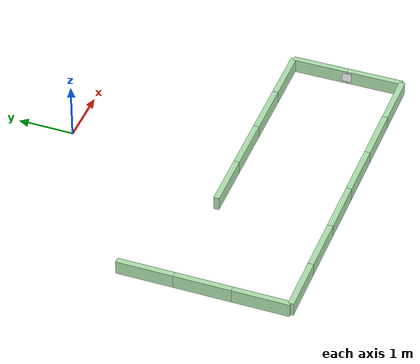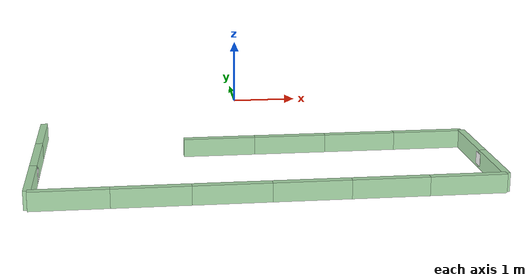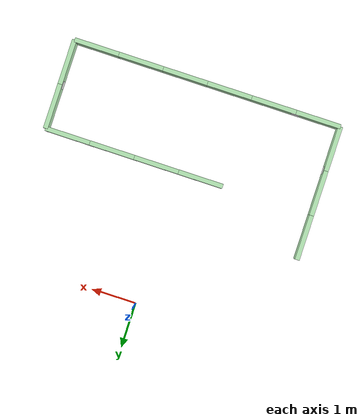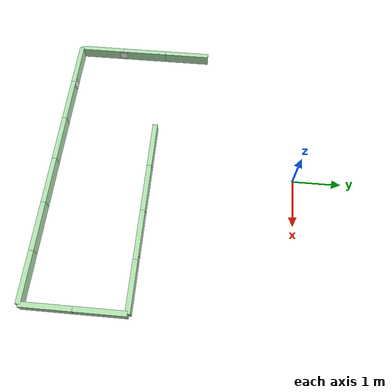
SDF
<sdf version="1.6">
 <world name="default">
  <model name="wall_100_25h_1_clone_3">
   <link name="link">
    <inertial>
     <mass>1</mass>
     <inertia>
      <ixx>0.166667</ixx>
      <ixy>0</ixy>
      <ixz>0</ixz>
      <iyy>0.166667</iyy>
      <iyz>0</iyz>
      <izz>0.166667</izz>
     </inertia>
    </inertial>
    <visual name="visual">
     <geometry><box><size>1 0.1 0.25</size></box></geometry>
     <material>
      <script><name>Gazebo/Grey</name><uri>file://media/materials/scripts/gazebo.material</uri></script>
      <ambient>0.3 0.5 0.3 1</ambient>
      <diffuse>0.7 0.9 0.7 1</diffuse>
      <specular>0.01 0.02 0.01 1</specular>
      <emissive>0 0 0 1</emissive>
      <lighting>1</lighting>
      <shader type="vertex"><normal_map>__default__</normal_map></shader>
     </material>
    </visual>
    <collision name="collision">
     <geometry><box><size>1 0.1 0.25</size></box></geometry>
     <surface>
      <friction>
       <ode><mu>1</mu><mu2>1</mu2><fdir1>0 0 0</fdir1><slip1>0</slip1><slip2>0</slip2></ode>
       <torsional>
        <coefficient>1</coefficient>
        <patch_radius>0</patch_radius>
        <surface_radius>0</surface_radius>
        <use_patch_radius>1</use_patch_radius>
        <ode><slip>0</slip></ode>
       </torsional>
      </friction>
      <bounce><restitution_coefficient>0</restitution_coefficient><threshold>1e+06</threshold></bounce>
      <contact>
       <collide_without_contact>0</collide_without_contact>
       <collide_without_contact_bitmask>1</collide_without_contact_bitmask>
       <collide_bitmask>1</collide_bitmask>
       <ode>
        <soft_cfm>0</soft_cfm>
        <soft_erp>0.2</soft_erp>
        <kp>1e+13</kp>
        <kd>1</kd>
        <max_vel>0.01</max_vel>
        <min_depth>0</min_depth>
       </ode>
       <bullet>
        <split_impulse>1</split_impulse>
        <split_impulse_penetration_threshold>-0.01</split_impulse_penetration_threshold>
        <soft_cfm>0</soft_cfm>
        <soft_erp>0.2</soft_erp>
        <kp>1e+13</kp>
        <kd>1</kd>
       </bullet>
      </contact>
     </surface>
    </collision>
   </link>
   <static>1</static>
   <pose>-0.5 -3 0.125 0.000404 -0 0</pose>
  </model>
  <model name="wall_100_25h_1_clone_4">
   <link name="link">
    <inertial>
     <mass>1</mass>
     <inertia>
      <ixx>0.166667</ixx>
      <ixy>0</ixy>
      <ixz>0</ixz>
      <iyy>0.166667</iyy>
      <iyz>0</iyz>
      <izz>0.166667</izz>
     </inertia>
    </inertial>
    <visual name="visual">
     <geometry><box><size>1 0.1 0.25</size></box></geometry>
     <material>
      <script><name>Gazebo/Grey</name><uri>file://media/materials/scripts/gazebo.material</uri></script>
      <ambient>0.3 0.5 0.3 1</ambient>
      <diffuse>0.7 0.9 0.7 1</diffuse>
      <specular>0.01 0.02 0.01 1</specular>
      <emissive>0 0 0 1</emissive>
      <lighting>1</lighting>
      <shader type="vertex"><normal_map>__default__</normal_map></shader>
     </material>
    </visual>
    <collision name="collision">
     <geometry><box><size>1 0.1 0.25</size></box></geometry>
     <surface>
      <friction>
       <ode><mu>1</mu><mu2>1</mu2><fdir1>0 0 0</fdir1><slip1>0</slip1><slip2>0</slip2></ode>
       <torsional>
        <coefficient>1</coefficient>
        <patch_radius>0</patch_radius>
        <surface_radius>0</surface_radius>
        <use_patch_radius>1</use_patch_radius>
        <ode><slip>0</slip></ode>
       </torsional>
      </friction>
      <bounce><restitution_coefficient>0</restitution_coefficient><threshold>1e+06</threshold></bounce>
      <contact>
       <collide_without_contact>0</collide_without_contact>
       <collide_without_contact_bitmask>1</collide_without_contact_bitmask>
       <collide_bitmask>1</collide_bitmask>
       <ode>
        <soft_cfm>0</soft_cfm>
        <soft_erp>0.2</soft_erp>
        <kp>1e+13</kp>
        <kd>1</kd>
        <max_vel>0.01</max_vel>
        <min_depth>0</min_depth>
       </ode>
       <bullet>
        <split_impulse>1</split_impulse>
        <split_impulse_penetration_threshold>-0.01</split_impulse_penetration_threshold>
        <soft_cfm>0</soft_cfm>
        <soft_erp>0.2</soft_erp>
        <kp>1e+13</kp>
        <kd>1</kd>
       </bullet>
      </contact>
     </surface>
    </collision>
   </link>
   <static>1</static>
   <pose>0.5 -3 0.125 0.000404 -0 0</pose>
  </model>
  <model name="wall_100_25h_1_clone_5">
   <link name="link">
    <inertial>
     <mass>1</mass>
     <inertia>
      <ixx>0.166667</ixx>
      <ixy>0</ixy>
      <ixz>0</ixz>
      <iyy>0.166667</iyy>
      <iyz>0</iyz>
      <izz>0.166667</izz>
     </inertia>
    </inertial>
    <visual name="visual">
     <geometry><box><size>1 0.1 0.25</size></box></geometry>
     <material>
      <script><name>Gazebo/Grey</name><uri>file://media/materials/scripts/gazebo.material</uri></script>
      <ambient>0.3 0.5 0.3 1</ambient>
      <diffuse>0.7 0.9 0.7 1</diffuse>
      <specular>0.01 0.02 0.01 1</specular>
      <emissive>0 0 0 1</emissive>
      <lighting>1</lighting>
      <shader type="vertex"><normal_map>__default__</normal_map></shader>
     </material>
    </visual>
    <collision name="collision">
     <geometry><box><size>1 0.1 0.25</size></box></geometry>
     <surface>
      <friction>
       <ode><mu>1</mu><mu2>1</mu2><fdir1>0 0 0</fdir1><slip1>0</slip1><slip2>0</slip2></ode>
       <torsional>
        <coefficient>1</coefficient>
        <patch_radius>0</patch_radius>
        <surface_radius>0</surface_radius>
        <use_patch_radius>1</use_patch_radius>
        <ode><slip>0</slip></ode>
       </torsional>
      </friction>
      <bounce><restitution_coefficient>0</restitution_coefficient><threshold>1e+06</threshold></bounce>
      <contact>
       <collide_without_contact>0</collide_without_contact>
       <collide_without_contact_bitmask>1</collide_without_contact_bitmask>
       <collide_bitmask>1</collide_bitmask>
       <ode>
        <soft_cfm>0</soft_cfm>
        <soft_erp>0.2</soft_erp>
        <kp>1e+13</kp>
        <kd>1</kd>
        <max_vel>0.01</max_vel>
        <min_depth>0</min_depth>
       </ode>
       <bullet>
        <split_impulse>1</split_impulse>
        <split_impulse_penetration_threshold>-0.01</split_impulse_penetration_threshold>
        <soft_cfm>0</soft_cfm>
        <soft_erp>0.2</soft_erp>
        <kp>1e+13</kp>
        <kd>1</kd>
       </bullet>
      </contact>
     </surface>
    </collision>
   </link>
   <static>1</static>
   <pose>1.5 -3 0.125 0.000404 -0 0</pose>
  </model>
  <model name="wall_100_25h_1_clone_6">
   <link name="link">
    <inertial>
     <mass>1</mass>
     <inertia>
      <ixx>0.166667</ixx>
      <ixy>0</ixy>
      <ixz>0</ixz>
      <iyy>0.166667</iyy>
      <iyz>0</iyz>
      <izz>0.166667</izz>
     </inertia>
    </inertial>
    <visual name="visual">
     <geometry><box><size>1 0.1 0.25</size></box></geometry>
     <material>
      <script><name>Gazebo/Grey</name><uri>file://media/materials/scripts/gazebo.material</uri></script>
      <ambient>0.3 0.5 0.3 1</ambient>
      <diffuse>0.7 0.9 0.7 1</diffuse>
      <specular>0.01 0.02 0.01 1</specular>
      <emissive>0 0 0 1</emissive>
      <lighting>1</lighting>
      <shader type="vertex"><normal_map>__default__</normal_map></shader>
     </material>
    </visual>
    <collision name="collision">
     <geometry><box><size>1 0.1 0.25</size></box></geometry>
     <surface>
      <friction>
       <ode><mu>1</mu><mu2>1</mu2><fdir1>0 0 0</fdir1><slip1>0</slip1><slip2>0</slip2></ode>
       <torsional>
        <coefficient>1</coefficient>
        <patch_radius>0</patch_radius>
        <surface_radius>0</surface_radius>
        <use_patch_radius>1</use_patch_radius>
        <ode><slip>0</slip></ode>
       </torsional>
      </friction>
      <bounce><restitution_coefficient>0</restitution_coefficient><threshold>1e+06</threshold></bounce>
      <contact>
       <collide_without_contact>0</collide_without_contact>
       <collide_without_contact_bitmask>1</collide_without_contact_bitmask>
       <collide_bitmask>1</collide_bitmask>
       <ode>
        <soft_cfm>0</soft_cfm>
        <soft_erp>0.2</soft_erp>
        <kp>1e+13</kp>
        <kd>1</kd>
        <max_vel>0.01</max_vel>
        <min_depth>0</min_depth>
       </ode>
       <bullet>
        <split_impulse>1</split_impulse>
        <split_impulse_penetration_threshold>-0.01</split_impulse_penetration_threshold>
        <soft_cfm>0</soft_cfm>
        <soft_erp>0.2</soft_erp>
        <kp>1e+13</kp>
        <kd>1</kd>
       </bullet>
      </contact>
     </surface>
    </collision>
   </link>
   <static>1</static>
   <pose>2.5 -3 0.125 0.000404 -0 0</pose>
  </model>
  <model name="wall_100_25h_1_clone_9_clone_clone">
   <link name="link">
    <inertial>
     <mass>1</mass>
     <inertia>
      <ixx>0.166667</ixx>
      <ixy>0</ixy>
      <ixz>0</ixz>
      <iyy>0.166667</iyy>
      <iyz>0</iyz>
      <izz>0.166667</izz>
     </inertia>
    </inertial>
    <visual name="visual">
     <geometry><box><size>1 0.1 0.25</size></box></geometry>
     <material>
      <script><name>Gazebo/Grey</name><uri>file://media/materials/scripts/gazebo.material</uri></script>
      <ambient>0.3 0.5 0.3 1</ambient>
      <diffuse>0.7 0.9 0.7 1</diffuse>
      <specular>0.01 0.02 0.01 1</specular>
      <emissive>0 0 0 1</emissive>
      <lighting>1</lighting>
      <shader type="vertex"><normal_map>__default__</normal_map></shader>
     </material>
    </visual>
    <collision name="collision">
     <geometry><box><size>1 0.1 0.25</size></box></geometry>
     <surface>
      <friction>
       <ode><mu>1</mu><mu2>1</mu2><fdir1>0 0 0</fdir1><slip1>0</slip1><slip2>0</slip2></ode>
       <torsional>
        <coefficient>1</coefficient>
        <patch_radius>0</patch_radius>
        <surface_radius>0</surface_radius>
        <use_patch_radius>1</use_patch_radius>
        <ode><slip>0</slip></ode>
       </torsional>
      </friction>
      <bounce><restitution_coefficient>0</restitution_coefficient><threshold>1e+06</threshold></bounce>
      <contact>
       <collide_without_contact>0</collide_without_contact>
       <collide_without_contact_bitmask>1</collide_without_contact_bitmask>
       <collide_bitmask>1</collide_bitmask>
       <ode>
        <soft_cfm>0</soft_cfm>
        <soft_erp>0.2</soft_erp>
        <kp>1e+13</kp>
        <kd>1</kd>
        <max_vel>0.01</max_vel>
        <min_depth>0</min_depth>
       </ode>
       <bullet>
        <split_impulse>1</split_impulse>
        <split_impulse_penetration_threshold>-0.01</split_impulse_penetration_threshold>
        <soft_cfm>0</soft_cfm>
        <soft_erp>0.2</soft_erp>
        <kp>1e+13</kp>
        <kd>1</kd>
       </bullet>
      </contact>
     </surface>
    </collision>
   </link>
   <static>1</static>
   <pose>-3 -2.5 0.125 0 0.000404 -1.57111</pose>
  </model>
  <model name="wall_100_25h_1_clone_9_clone_clone_0">
   <link name="link">
    <inertial>
     <mass>1</mass>
     <inertia>
      <ixx>0.166667</ixx>
      <ixy>0</ixy>
      <ixz>0</ixz>
      <iyy>0.166667</iyy>
      <iyz>0</iyz>
      <izz>0.166667</izz>
     </inertia>
    </inertial>
    <visual name="visual">
     <geometry><box><size>1 0.1 0.25</size></box></geometry>
     <material>
      <script><name>Gazebo/Grey</name><uri>file://media/materials/scripts/gazebo.material</uri></script>
      <ambient>0.3 0.5 0.3 1</ambient>
      <diffuse>0.7 0.9 0.7 1</diffuse>
      <specular>0.01 0.02 0.01 1</specular>
      <emissive>0 0 0 1</emissive>
      <lighting>1</lighting>
      <shader type="vertex"><normal_map>__default__</normal_map></shader>
     </material>
    </visual>
    <collision name="collision">
     <geometry><box><size>1 0.1 0.25</size></box></geometry>
     <surface>
      <friction>
       <ode><mu>1</mu><mu2>1</mu2><fdir1>0 0 0</fdir1><slip1>0</slip1><slip2>0</slip2></ode>
       <torsional>
        <coefficient>1</coefficient>
        <patch_radius>0</patch_radius>
        <surface_radius>0</surface_radius>
        <use_patch_radius>1</use_patch_radius>
        <ode><slip>0</slip></ode>
       </torsional>
      </friction>
      <bounce><restitution_coefficient>0</restitution_coefficient><threshold>1e+06</threshold></bounce>
      <contact>
       <collide_without_contact>0</collide_without_contact>
       <collide_without_contact_bitmask>1</collide_without_contact_bitmask>
       <collide_bitmask>1</collide_bitmask>
       <ode>
        <soft_cfm>0</soft_cfm>
        <soft_erp>0.2</soft_erp>
        <kp>1e+13</kp>
        <kd>1</kd>
        <max_vel>0.01</max_vel>
        <min_depth>0</min_depth>
       </ode>
       <bullet>
        <split_impulse>1</split_impulse>
        <split_impulse_penetration_threshold>-0.01</split_impulse_penetration_threshold>
        <soft_cfm>0</soft_cfm>
        <soft_erp>0.2</soft_erp>
        <kp>1e+13</kp>
        <kd>1</kd>
       </bullet>
      </contact>
     </surface>
    </collision>
   </link>
   <static>1</static>
   <pose>-3 -3.5 0.125 0 0.000404 -1.57111</pose>
  </model>
  <model name="wall_100_25h_1_clone_9_clone_clone_1">
   <link name="link">
    <inertial>
     <mass>1</mass>
     <inertia>
      <ixx>0.166667</ixx>
      <ixy>0</ixy>
      <ixz>0</ixz>
      <iyy>0.166667</iyy>
      <iyz>0</iyz>
      <izz>0.166667</izz>
     </inertia>
    </inertial>
    <visual name="visual">
     <geometry><box><size>1 0.1 0.25</size></box></geometry>
     <material>
      <script><name>Gazebo/Grey</name><uri>file://media/materials/scripts/gazebo.material</uri></script>
      <ambient>0.3 0.5 0.3 1</ambient>
      <diffuse>0.7 0.9 0.7 1</diffuse>
      <specular>0.01 0.02 0.01 1</specular>
      <emissive>0 0 0 1</emissive>
      <lighting>1</lighting>
      <shader type="vertex"><normal_map>__default__</normal_map></shader>
     </material>
    </visual>
    <collision name="collision">
     <geometry><box><size>1 0.1 0.25</size></box></geometry>
     <surface>
      <friction>
       <ode><mu>1</mu><mu2>1</mu2><fdir1>0 0 0</fdir1><slip1>0</slip1><slip2>0</slip2></ode>
       <torsional>
        <coefficient>1</coefficient>
        <patch_radius>0</patch_radius>
        <surface_radius>0</surface_radius>
        <use_patch_radius>1</use_patch_radius>
        <ode><slip>0</slip></ode>
       </torsional>
      </friction>
      <bounce><restitution_coefficient>0</restitution_coefficient><threshold>1e+06</threshold></bounce>
      <contact>
       <collide_without_contact>0</collide_without_contact>
       <collide_without_contact_bitmask>1</collide_without_contact_bitmask>
       <collide_bitmask>1</collide_bitmask>
       <ode>
        <soft_cfm>0</soft_cfm>
        <soft_erp>0.2</soft_erp>
        <kp>1e+13</kp>
        <kd>1</kd>
        <max_vel>0.01</max_vel>
        <min_depth>0</min_depth>
       </ode>
       <bullet>
        <split_impulse>1</split_impulse>
        <split_impulse_penetration_threshold>-0.01</split_impulse_penetration_threshold>
        <soft_cfm>0</soft_cfm>
        <soft_erp>0.2</soft_erp>
        <kp>1e+13</kp>
        <kd>1</kd>
       </bullet>
      </contact>
     </surface>
    </collision>
   </link>
   <static>1</static>
   <pose>-3 -4.5 0.125 0 0.000404 -1.57111</pose>
  </model>
  <model name="wall_100_25h_1_clone_9_clone_clone_2">
   <link name="link">
    <inertial>
     <mass>1</mass>
     <inertia>
      <ixx>0.166667</ixx>
      <ixy>0</ixy>
      <ixz>0</ixz>
      <iyy>0.166667</iyy>
      <iyz>0</iyz>
      <izz>0.166667</izz>
     </inertia>
    </inertial>
    <visual name="visual">
     <geometry><box><size>1 0.1 0.25</size></box></geometry>
     <material>
      <script><name>Gazebo/Grey</name><uri>file://media/materials/scripts/gazebo.material</uri></script>
      <ambient>0.3 0.5 0.3 1</ambient>
      <diffuse>0.7 0.9 0.7 1</diffuse>
      <specular>0.01 0.02 0.01 1</specular>
      <emissive>0 0 0 1</emissive>
      <lighting>1</lighting>
      <shader type="vertex"><normal_map>__default__</normal_map></shader>
     </material>
    </visual>
    <collision name="collision">
     <geometry><box><size>1 0.1 0.25</size></box></geometry>
     <surface>
      <friction>
       <ode><mu>1</mu><mu2>1</mu2><fdir1>0 0 0</fdir1><slip1>0</slip1><slip2>0</slip2></ode>
       <torsional>
        <coefficient>1</coefficient>
        <patch_radius>0</patch_radius>
        <surface_radius>0</surface_radius>
        <use_patch_radius>1</use_patch_radius>
        <ode><slip>0</slip></ode>
       </torsional>
      </friction>
      <bounce><restitution_coefficient>0</restitution_coefficient><threshold>1e+06</threshold></bounce>
      <contact>
       <collide_without_contact>0</collide_without_contact>
       <collide_without_contact_bitmask>1</collide_without_contact_bitmask>
       <collide_bitmask>1</collide_bitmask>
       <ode>
        <soft_cfm>0</soft_cfm>
        <soft_erp>0.2</soft_erp>
        <kp>1e+13</kp>
        <kd>1</kd>
        <max_vel>0.01</max_vel>
        <min_depth>0</min_depth>
       </ode>
       <bullet>
        <split_impulse>1</split_impulse>
        <split_impulse_penetration_threshold>-0.01</split_impulse_penetration_threshold>
        <soft_cfm>0</soft_cfm>
        <soft_erp>0.2</soft_erp>
        <kp>1e+13</kp>
        <kd>1</kd>
       </bullet>
      </contact>
     </surface>
    </collision>
   </link>
   <static>1</static>
   <pose>3 -3.5 0.125 0 0.000404 -1.57111</pose>
  </model>
  <model name="wall_100_25h_1_clone_9_clone_clone_3">
   <link name="link">
    <inertial>
     <mass>1</mass>
     <inertia>
      <ixx>0.166667</ixx>
      <ixy>0</ixy>
      <ixz>0</ixz>
      <iyy>0.166667</iyy>
      <iyz>0</iyz>
      <izz>0.166667</izz>
     </inertia>
    </inertial>
    <visual name="visual">
     <geometry><box><size>1 0.1 0.25</size></box></geometry>
     <material>
      <script><name>Gazebo/Grey</name><uri>file://media/materials/scripts/gazebo.material</uri></script>
      <ambient>0.3 0.5 0.3 1</ambient>
      <diffuse>0.7 0.9 0.7 1</diffuse>
      <specular>0.01 0.02 0.01 1</specular>
      <emissive>0 0 0 1</emissive>
      <lighting>1</lighting>
      <shader type="vertex"><normal_map>__default__</normal_map></shader>
     </material>
    </visual>
    <collision name="collision">
     <geometry><box><size>1 0.1 0.25</size></box></geometry>
     <surface>
      <friction>
       <ode><mu>1</mu><mu2>1</mu2><fdir1>0 0 0</fdir1><slip1>0</slip1><slip2>0</slip2></ode>
       <torsional>
        <coefficient>1</coefficient>
        <patch_radius>0</patch_radius>
        <surface_radius>0</surface_radius>
        <use_patch_radius>1</use_patch_radius>
        <ode><slip>0</slip></ode>
       </torsional>
      </friction>
      <bounce><restitution_coefficient>0</restitution_coefficient><threshold>1e+06</threshold></bounce>
      <contact>
       <collide_without_contact>0</collide_without_contact>
       <collide_without_contact_bitmask>1</collide_without_contact_bitmask>
       <collide_bitmask>1</collide_bitmask>
       <ode>
        <soft_cfm>0</soft_cfm>
        <soft_erp>0.2</soft_erp>
        <kp>1e+13</kp>
        <kd>1</kd>
        <max_vel>0.01</max_vel>
        <min_depth>0</min_depth>
       </ode>
       <bullet>
        <split_impulse>1</split_impulse>
        <split_impulse_penetration_threshold>-0.01</split_impulse_penetration_threshold>
        <soft_cfm>0</soft_cfm>
        <soft_erp>0.2</soft_erp>
        <kp>1e+13</kp>
        <kd>1</kd>
       </bullet>
      </contact>
     </surface>
    </collision>
   </link>
   <static>1</static>
   <pose>3 -4.5 0.125 0 0.000404 -1.57111</pose>
  </model>
  <model name="wall_100_25h_1_clone_3_clone">
   <link name="link">
    <inertial>
     <mass>1</mass>
     <inertia>
      <ixx>0.166667</ixx>
      <ixy>0</ixy>
      <ixz>0</ixz>
      <iyy>0.166667</iyy>
      <iyz>0</iyz>
      <izz>0.166667</izz>
     </inertia>
    </inertial>
    <visual name="visual">
     <geometry><box><size>1 0.1 0.25</size></box></geometry>
     <material>
      <script><name>Gazebo/Grey</name><uri>file://media/materials/scripts/gazebo.material</uri></script>
      <ambient>0.3 0.5 0.3 1</ambient>
      <diffuse>0.7 0.9 0.7 1</diffuse>
      <specular>0.01 0.02 0.01 1</specular>
      <emissive>0 0 0 1</emissive>
      <lighting>1</lighting>
      <shader type="vertex"><normal_map>__default__</normal_map></shader>
     </material>
    </visual>
    <collision name="collision">
     <geometry><box><size>1 0.1 0.25</size></box></geometry>
     <surface>
      <friction>
       <ode><mu>1</mu><mu2>1</mu2><fdir1>0 0 0</fdir1><slip1>0</slip1><slip2>0</slip2></ode>
       <torsional>
        <coefficient>1</coefficient>
        <patch_radius>0</patch_radius>
        <surface_radius>0</surface_radius>
        <use_patch_radius>1</use_patch_radius>
        <ode><slip>0</slip></ode>
       </torsional>
      </friction>
      <bounce><restitution_coefficient>0</restitution_coefficient><threshold>1e+06</threshold></bounce>
      <contact>
       <collide_without_contact>0</collide_without_contact>
       <collide_without_contact_bitmask>1</collide_without_contact_bitmask>
       <collide_bitmask>1</collide_bitmask>
       <ode>
        <soft_cfm>0</soft_cfm>
        <soft_erp>0.2</soft_erp>
        <kp>1e+13</kp>
        <kd>1</kd>
        <max_vel>0.01</max_vel>
        <min_depth>0</min_depth>
       </ode>
       <bullet>
        <split_impulse>1</split_impulse>
        <split_impulse_penetration_threshold>-0.01</split_impulse_penetration_threshold>
        <soft_cfm>0</soft_cfm>
        <soft_erp>0.2</soft_erp>
        <kp>1e+13</kp>
        <kd>1</kd>
       </bullet>
      </contact>
     </surface>
    </collision>
   </link>
   <static>1</static>
   <pose>-2.5 -5 0.125 0.000404 -0 0</pose>
  </model>
  <model name="wall_100_25h_1_clone_3_clone_0">
   <link name="link">
    <inertial>
     <mass>1</mass>
     <inertia>
      <ixx>0.166667</ixx>
      <ixy>0</ixy>
      <ixz>0</ixz>
      <iyy>0.166667</iyy>
      <iyz>0</iyz>
      <izz>0.166667</izz>
     </inertia>
    </inertial>
    <visual name="visual">
     <geometry><box><size>1 0.1 0.25</size></box></geometry>
     <material>
      <script><name>Gazebo/Grey</name><uri>file://media/materials/scripts/gazebo.material</uri></script>
      <ambient>0.3 0.5 0.3 1</ambient>
      <diffuse>0.7 0.9 0.7 1</diffuse>
      <specular>0.01 0.02 0.01 1</specular>
      <emissive>0 0 0 1</emissive>
      <lighting>1</lighting>
      <shader type="vertex"><normal_map>__default__</normal_map></shader>
     </material>
    </visual>
    <collision name="collision">
     <geometry><box><size>1 0.1 0.25</size></box></geometry>
     <surface>
      <friction>
       <ode><mu>1</mu><mu2>1</mu2><fdir1>0 0 0</fdir1><slip1>0</slip1><slip2>0</slip2></ode>
       <torsional>
        <coefficient>1</coefficient>
        <patch_radius>0</patch_radius>
        <surface_radius>0</surface_radius>
        <use_patch_radius>1</use_patch_radius>
        <ode><slip>0</slip></ode>
       </torsional>
      </friction>
      <bounce><restitution_coefficient>0</restitution_coefficient><threshold>1e+06</threshold></bounce>
      <contact>
       <collide_without_contact>0</collide_without_contact>
       <collide_without_contact_bitmask>1</collide_without_contact_bitmask>
       <collide_bitmask>1</collide_bitmask>
       <ode>
        <soft_cfm>0</soft_cfm>
        <soft_erp>0.2</soft_erp>
        <kp>1e+13</kp>
        <kd>1</kd>
        <max_vel>0.01</max_vel>
        <min_depth>0</min_depth>
       </ode>
       <bullet>
        <split_impulse>1</split_impulse>
        <split_impulse_penetration_threshold>-0.01</split_impulse_penetration_threshold>
        <soft_cfm>0</soft_cfm>
        <soft_erp>0.2</soft_erp>
        <kp>1e+13</kp>
        <kd>1</kd>
       </bullet>
      </contact>
     </surface>
    </collision>
   </link>
   <static>1</static>
   <pose>-1.5 -5 0.125 0.000404 -0 0</pose>
  </model>
  <model name="wall_100_25h_1_clone_3_clone_1">
   <link name="link">
    <inertial>
     <mass>1</mass>
     <inertia>
      <ixx>0.166667</ixx>
      <ixy>0</ixy>
      <ixz>0</ixz>
      <iyy>0.166667</iyy>
      <iyz>0</iyz>
      <izz>0.166667</izz>
     </inertia>
    </inertial>
    <visual name="visual">
     <geometry><box><size>1 0.1 0.25</size></box></geometry>
     <material>
      <script><name>Gazebo/Grey</name><uri>file://media/materials/scripts/gazebo.material</uri></script>
      <ambient>0.3 0.5 0.3 1</ambient>
      <diffuse>0.7 0.9 0.7 1</diffuse>
      <specular>0.01 0.02 0.01 1</specular>
      <emissive>0 0 0 1</emissive>
      <lighting>1</lighting>
      <shader type="vertex"><normal_map>__default__</normal_map></shader>
     </material>
    </visual>
    <collision name="collision">
     <geometry><box><size>1 0.1 0.25</size></box></geometry>
     <surface>
      <friction>
       <ode><mu>1</mu><mu2>1</mu2><fdir1>0 0 0</fdir1><slip1>0</slip1><slip2>0</slip2></ode>
       <torsional>
        <coefficient>1</coefficient>
        <patch_radius>0</patch_radius>
        <surface_radius>0</surface_radius>
        <use_patch_radius>1</use_patch_radius>
        <ode><slip>0</slip></ode>
       </torsional>
      </friction>
      <bounce><restitution_coefficient>0</restitution_coefficient><threshold>1e+06</threshold></bounce>
      <contact>
       <collide_without_contact>0</collide_without_contact>
       <collide_without_contact_bitmask>1</collide_without_contact_bitmask>
       <collide_bitmask>1</collide_bitmask>
       <ode>
        <soft_cfm>0</soft_cfm>
        <soft_erp>0.2</soft_erp>
        <kp>1e+13</kp>
        <kd>1</kd>
        <max_vel>0.01</max_vel>
        <min_depth>0</min_depth>
       </ode>
       <bullet>
        <split_impulse>1</split_impulse>
        <split_impulse_penetration_threshold>-0.01</split_impulse_penetration_threshold>
        <soft_cfm>0</soft_cfm>
        <soft_erp>0.2</soft_erp>
        <kp>1e+13</kp>
        <kd>1</kd>
       </bullet>
      </contact>
     </surface>
    </collision>
   </link>
   <static>1</static>
   <pose>-0.5 -5 0.125 0.000404 -0 0</pose>
  </model>
  <model name="wall_100_25h_1_clone_3_clone_2">
   <link name="link">
    <inertial>
     <mass>1</mass>
     <inertia>
      <ixx>0.166667</ixx>
      <ixy>0</ixy>
      <ixz>0</ixz>
      <iyy>0.166667</iyy>
      <iyz>0</iyz>
      <izz>0.166667</izz>
     </inertia>
    </inertial>
    <visual name="visual">
     <geometry><box><size>1 0.1 0.25</size></box></geometry>
     <material>
      <script><name>Gazebo/Grey</name><uri>file://media/materials/scripts/gazebo.material</uri></script>
      <ambient>0.3 0.5 0.3 1</ambient>
      <diffuse>0.7 0.9 0.7 1</diffuse>
      <specular>0.01 0.02 0.01 1</specular>
      <emissive>0 0 0 1</emissive>
      <lighting>1</lighting>
      <shader type="vertex"><normal_map>__default__</normal_map></shader>
     </material>
    </visual>
    <collision name="collision">
     <geometry><box><size>1 0.1 0.25</size></box></geometry>
     <surface>
      <friction>
       <ode><mu>1</mu><mu2>1</mu2><fdir1>0 0 0</fdir1><slip1>0</slip1><slip2>0</slip2></ode>
       <torsional>
        <coefficient>1</coefficient>
        <patch_radius>0</patch_radius>
        <surface_radius>0</surface_radius>
        <use_patch_radius>1</use_patch_radius>
        <ode><slip>0</slip></ode>
       </torsional>
      </friction>
      <bounce><restitution_coefficient>0</restitution_coefficient><threshold>1e+06</threshold></bounce>
      <contact>
       <collide_without_contact>0</collide_without_contact>
       <collide_without_contact_bitmask>1</collide_without_contact_bitmask>
       <collide_bitmask>1</collide_bitmask>
       <ode>
        <soft_cfm>0</soft_cfm>
        <soft_erp>0.2</soft_erp>
        <kp>1e+13</kp>
        <kd>1</kd>
        <max_vel>0.01</max_vel>
        <min_depth>0</min_depth>
       </ode>
       <bullet>
        <split_impulse>1</split_impulse>
        <split_impulse_penetration_threshold>-0.01</split_impulse_penetration_threshold>
        <soft_cfm>0</soft_cfm>
        <soft_erp>0.2</soft_erp>
        <kp>1e+13</kp>
        <kd>1</kd>
       </bullet>
      </contact>
     </surface>
    </collision>
   </link>
   <static>1</static>
   <pose>0.5 -5 0.125 0.000404 -0 0</pose>
  </model>
  <model name="wall_100_25h_1_clone_3_clone_3">
   <link name="link">
    <inertial>
     <mass>1</mass>
     <inertia>
      <ixx>0.166667</ixx>
      <ixy>0</ixy>
      <ixz>0</ixz>
      <iyy>0.166667</iyy>
      <iyz>0</iyz>
      <izz>0.166667</izz>
     </inertia>
    </inertial>
    <visual name="visual">
     <geometry><box><size>1 0.1 0.25</size></box></geometry>
     <material>
      <script><name>Gazebo/Grey</name><uri>file://media/materials/scripts/gazebo.material</uri></script>
      <ambient>0.3 0.5 0.3 1</ambient>
      <diffuse>0.7 0.9 0.7 1</diffuse>
      <specular>0.01 0.02 0.01 1</specular>
      <emissive>0 0 0 1</emissive>
      <lighting>1</lighting>
      <shader type="vertex"><normal_map>__default__</normal_map></shader>
     </material>
    </visual>
    <collision name="collision">
     <geometry><box><size>1 0.1 0.25</size></box></geometry>
     <surface>
      <friction>
       <ode><mu>1</mu><mu2>1</mu2><fdir1>0 0 0</fdir1><slip1>0</slip1><slip2>0</slip2></ode>
       <torsional>
        <coefficient>1</coefficient>
        <patch_radius>0</patch_radius>
        <surface_radius>0</surface_radius>
        <use_patch_radius>1</use_patch_radius>
        <ode><slip>0</slip></ode>
       </torsional>
      </friction>
      <bounce><restitution_coefficient>0</restitution_coefficient><threshold>1e+06</threshold></bounce>
      <contact>
       <collide_without_contact>0</collide_without_contact>
       <collide_without_contact_bitmask>1</collide_without_contact_bitmask>
       <collide_bitmask>1</collide_bitmask>
       <ode>
        <soft_cfm>0</soft_cfm>
        <soft_erp>0.2</soft_erp>
        <kp>1e+13</kp>
        <kd>1</kd>
        <max_vel>0.01</max_vel>
        <min_depth>0</min_depth>
       </ode>
       <bullet>
        <split_impulse>1</split_impulse>
        <split_impulse_penetration_threshold>-0.01</split_impulse_penetration_threshold>
        <soft_cfm>0</soft_cfm>
        <soft_erp>0.2</soft_erp>
        <kp>1e+13</kp>
        <kd>1</kd>
       </bullet>
      </contact>
     </surface>
    </collision>
   </link>
   <static>1</static>
   <pose>1.5 -5 0.125 0.000404 -0 0</pose>
  </model>
  <model name="wall_100_25h_1_clone_3_clone_4">
   <link name="link">
    <inertial>
     <mass>1</mass>
     <inertia>
      <ixx>0.166667</ixx>
      <ixy>0</ixy>
      <ixz>0</ixz>
      <iyy>0.166667</iyy>
      <iyz>0</iyz>
      <izz>0.166667</izz>
     </inertia>
    </inertial>
    <visual name="visual">
     <geometry><box><size>1 0.1 0.25</size></box></geometry>
     <material>
      <script><name>Gazebo/Grey</name><uri>file://media/materials/scripts/gazebo.material</uri></script>
      <ambient>0.3 0.5 0.3 1</ambient>
      <diffuse>0.7 0.9 0.7 1</diffuse>
      <specular>0.01 0.02 0.01 1</specular>
      <emissive>0 0 0 1</emissive>
      <lighting>1</lighting>
      <shader type="vertex"><normal_map>__default__</normal_map></shader>
     </material>
    </visual>
    <collision name="collision">
     <geometry><box><size>1 0.1 0.25</size></box></geometry>
     <surface>
      <friction>
       <ode><mu>1</mu><mu2>1</mu2><fdir1>0 0 0</fdir1><slip1>0</slip1><slip2>0</slip2></ode>
       <torsional>
        <coefficient>1</coefficient>
        <patch_radius>0</patch_radius>
        <surface_radius>0</surface_radius>
        <use_patch_radius>1</use_patch_radius>
        <ode><slip>0</slip></ode>
       </torsional>
      </friction>
      <bounce><restitution_coefficient>0</restitution_coefficient><threshold>1e+06</threshold></bounce>
      <contact>
       <collide_without_contact>0</collide_without_contact>
       <collide_without_contact_bitmask>1</collide_without_contact_bitmask>
       <collide_bitmask>1</collide_bitmask>
       <ode>
        <soft_cfm>0</soft_cfm>
        <soft_erp>0.2</soft_erp>
        <kp>1e+13</kp>
        <kd>1</kd>
        <max_vel>0.01</max_vel>
        <min_depth>0</min_depth>
       </ode>
       <bullet>
        <split_impulse>1</split_impulse>
        <split_impulse_penetration_threshold>-0.01</split_impulse_penetration_threshold>
        <soft_cfm>0</soft_cfm>
        <soft_erp>0.2</soft_erp>
        <kp>1e+13</kp>
        <kd>1</kd>
       </bullet>
      </contact>
     </surface>
    </collision>
   </link>
   <static>1</static>
   <pose>2.5 -5 0.125 0.000404 -0 0</pose>
  </model>
  <model name="Apriltag36_11_00001_clone_clone">
   <link name="main">
    <inertial>
     <mass>1</mass>
     <inertia><ixx>1</ixx><ixy>0</ixy><ixz>0</ixz><iyy>1</iyy><iyz>0</iyz><izz>1</izz></inertia>
    </inertial>
    <visual name="main_Visual">
     <geometry><box><size>0.170546 0.170546 0.002005</size></box></geometry>
     <material>
      <script>
       <uri>model://Apriltag36_11_00001/materials/scripts</uri>
       <uri>model://Apriltag36_11_00001/materials/textures</uri>
       <name>Apriltag36_11_00001</name>
      </script>
      <shader type="pixel"><normal_map>__default__</normal_map></shader>
      <ambient>1 1 1 1</ambient>
      <diffuse>1 1 1 1</diffuse>
      <specular>0 0 0 1</specular>
      <emissive>0 0 0 1</emissive>
     </material>
    </visual>
   </link>
   <static>1</static>
   <pose>1.99943 -2.94673 0.125296 1.55682 1.56339 1e-06</pose>
  </model>
  <model name="Apriltag36_11_00000_clone">
   <link name="main">
    <inertial>
     <mass>1</mass>
     <inertia><ixx>1</ixx><ixy>0</ixy><ixz>0</ixz><iyy>1</iyy><iyz>0</iyz><izz>1</izz></inertia>
    </inertial>
    <visual name="main_Visual">
     <geometry><box><size>0.17 0.17 0.01</size></box></geometry>
     <material>
      <script>
       <uri>model://Apriltag36_11_00000/materials/scripts</uri>
       <uri>model://Apriltag36_11_00000/materials/textures</uri>
       <name>Apriltag36_11_00000</name>
      </script>
      <shader type="pixel"><normal_map>__default__</normal_map></shader>
      <ambient>1 1 1 1</ambient>
      <diffuse>1 1 1 1</diffuse>
      <specular>0 0 0 1</specular>
      <emissive>0 0 0 1</emissive>
     </material>
     <pose>0 0 0.15 0 1.54 0</pose>
    </visual>
   </link>
   <static>1</static>
   <pose>-2 -4.94498 0 0 -0 1.57</pose>
  </model>
  <model name="Apriltag36_11_00002">
   <link name="main">
    <inertial>
     <mass>1</mass>
     <inertia><ixx>1</ixx><ixy>0</ixy><ixz>0</ixz><iyy>1</iyy><iyz>0</iyz><izz>1</izz></inertia>
    </inertial>
    <visual name="main_Visual">
     <geometry><box><size>0.17 0.17 0.004293</size></box></geometry>
     <material>
      <script>
       <uri>model://Apriltag36_11_00002/materials/scripts</uri>
       <uri>model://Apriltag36_11_00002/materials/textures</uri>
       <name>Apriltag36_11_00002</name>
      </script>
      <shader type="pixel"><normal_map>__default__</normal_map></shader>
      <ambient>1 1 1 1</ambient>
      <diffuse>1 1 1 1</diffuse>
      <specular>0 0 0 1</specular>
      <emissive>0 0 0 1</emissive>
     </material>
    </visual>
   </link>
   <static>1</static>
   <pose>2.94566 -4 0.125834 3.14159 1.57 3.14159</pose>
  </model>
  <model name="Apriltag36_11_00001_clone_clone_0">
   <link name="main">
    <inertial>
     <mass>1</mass>
     <inertia><ixx>1</ixx><ixy>0</ixy><ixz>0</ixz><iyy>1</iyy><iyz>0</iyz><izz>1</izz></inertia>
    </inertial>
    <visual name="main_Visual">
     <geometry><box><size>0.170546 0.170546 0.002005</size></box></geometry>
     <material>
      <script>
       <uri>model://Apriltag36_11_00001/materials/scripts</uri>
       <uri>model://Apriltag36_11_00001/materials/textures</uri>
       <name>Apriltag36_11_00001</name>
      </script>
      <shader type="pixel"><normal_map>__default__</normal_map></shader>
      <ambient>1 1 1 1</ambient>
      <diffuse>1 1 1 1</diffuse>
      <specular>0 0 0 1</specular>
      <emissive>0 0 0 1</emissive>
     </material>
    </visual>
   </link>
   <static>1</static>
   <pose>-2.94364 -4 0.125987 0 1.57 0</pose>
  </model>
 </world>
</sdf>
